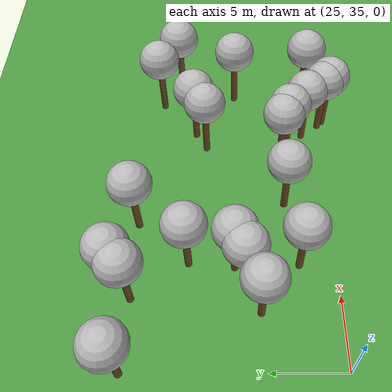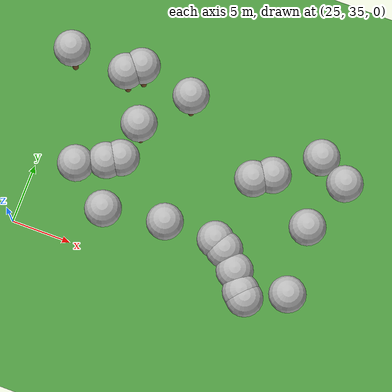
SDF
<sdf version="1.5">
 <world name="default">
  <model name="tree_simple475">
   <static>1</static>
   <link name="link">
    <pose>0 0 0.1 0 -0 0</pose>
    <collision name="collision_trunk">
     <pose>0 0 2 0 -0 0</pose>
     <geometry><cylinder><radius>0.25</radius><length>4</length></cylinder></geometry>
    </collision>
    <collision name="collision_treetop">
     <pose>0 0 5.2 0 -0 0</pose>
     <geometry><sphere><radius>1.5</radius></sphere></geometry>
    </collision>
    <visual name="trunk">
     <pose>0 0 2 0 -0 0</pose>
     <geometry><cylinder><radius>0.25</radius><length>4</length></cylinder></geometry>
     <material>
      <script>
       <uri>model://tree_simple/scripts</uri>
       <uri>model://tree_simple/materials/textures</uri>
       <name>TreeSimple/Trunk</name>
      </script>
     </material>
    </visual>
    <visual name="treetop">
     <pose>0 0 5.2 0 -0 0</pose>
     <geometry><sphere><radius>1.5</radius></sphere></geometry>
     <material>
      <script>
       <uri>model://tree_simple/scripts</uri>
       <uri>model://tree_simple/materials/textures</uri>
       <name>TreeSimple/Treetop</name>
      </script>
     </material>
    </visual>
   </link>
   <pose>30.9431222124 49.7431013716 0 0 -0 0</pose>
  </model>
  <model name="tree_simple449">
   <static>1</static>
   <link name="link">
    <pose>0 0 0.1 0 -0 0</pose>
    <collision name="collision_trunk">
     <pose>0 0 2 0 -0 0</pose>
     <geometry><cylinder><radius>0.25</radius><length>4</length></cylinder></geometry>
    </collision>
    <collision name="collision_treetop">
     <pose>0 0 5.2 0 -0 0</pose>
     <geometry><sphere><radius>1.5</radius></sphere></geometry>
    </collision>
    <visual name="trunk">
     <pose>0 0 2 0 -0 0</pose>
     <geometry><cylinder><radius>0.25</radius><length>4</length></cylinder></geometry>
     <material>
      <script>
       <uri>model://tree_simple/scripts</uri>
       <uri>model://tree_simple/materials/textures</uri>
       <name>TreeSimple/Trunk</name>
      </script>
     </material>
    </visual>
    <visual name="treetop">
     <pose>0 0 5.2 0 -0 0</pose>
     <geometry><sphere><radius>1.5</radius></sphere></geometry>
     <material>
      <script>
       <uri>model://tree_simple/scripts</uri>
       <uri>model://tree_simple/materials/textures</uri>
       <name>TreeSimple/Treetop</name>
      </script>
     </material>
    </visual>
   </link>
   <pose>32.2301413543 37.584175072 0 0 -0 0</pose>
  </model>
  <model name="tree_simple435">
   <static>1</static>
   <link name="link">
    <pose>0 0 0.1 0 -0 0</pose>
    <collision name="collision_trunk">
     <pose>0 0 2 0 -0 0</pose>
     <geometry><cylinder><radius>0.25</radius><length>4</length></cylinder></geometry>
    </collision>
    <collision name="collision_treetop">
     <pose>0 0 5.2 0 -0 0</pose>
     <geometry><sphere><radius>1.5</radius></sphere></geometry>
    </collision>
    <visual name="trunk">
     <pose>0 0 2 0 -0 0</pose>
     <geometry><cylinder><radius>0.25</radius><length>4</length></cylinder></geometry>
     <material>
      <script>
       <uri>model://tree_simple/scripts</uri>
       <uri>model://tree_simple/materials/textures</uri>
       <name>TreeSimple/Trunk</name>
      </script>
     </material>
    </visual>
    <visual name="treetop">
     <pose>0 0 5.2 0 -0 0</pose>
     <geometry><sphere><radius>1.5</radius></sphere></geometry>
     <material>
      <script>
       <uri>model://tree_simple/scripts</uri>
       <uri>model://tree_simple/materials/textures</uri>
       <name>TreeSimple/Treetop</name>
      </script>
     </material>
    </visual>
   </link>
   <pose>25.0532985597 49.162593115 0 0 -0 0</pose>
  </model>
  <model name="tree_simple426">
   <static>1</static>
   <link name="link">
    <pose>0 0 0.1 0 -0 0</pose>
    <collision name="collision_trunk">
     <pose>0 0 2 0 -0 0</pose>
     <geometry><cylinder><radius>0.25</radius><length>4</length></cylinder></geometry>
    </collision>
    <collision name="collision_treetop">
     <pose>0 0 5.2 0 -0 0</pose>
     <geometry><sphere><radius>1.5</radius></sphere></geometry>
    </collision>
    <visual name="trunk">
     <pose>0 0 2 0 -0 0</pose>
     <geometry><cylinder><radius>0.25</radius><length>4</length></cylinder></geometry>
     <material>
      <script>
       <uri>model://tree_simple/scripts</uri>
       <uri>model://tree_simple/materials/textures</uri>
       <name>TreeSimple/Trunk</name>
      </script>
     </material>
    </visual>
    <visual name="treetop">
     <pose>0 0 5.2 0 -0 0</pose>
     <geometry><sphere><radius>1.5</radius></sphere></geometry>
     <material>
      <script>
       <uri>model://tree_simple/scripts</uri>
       <uri>model://tree_simple/materials/textures</uri>
       <name>TreeSimple/Treetop</name>
      </script>
     </material>
    </visual>
   </link>
   <pose>48.2961501598 36.1951986296 0 0 -0 0</pose>
  </model>
  <model name="tree_simple414">
   <static>1</static>
   <link name="link">
    <pose>0 0 0.1 0 -0 0</pose>
    <collision name="collision_trunk">
     <pose>0 0 2 0 -0 0</pose>
     <geometry><cylinder><radius>0.25</radius><length>4</length></cylinder></geometry>
    </collision>
    <collision name="collision_treetop">
     <pose>0 0 5.2 0 -0 0</pose>
     <geometry><sphere><radius>1.5</radius></sphere></geometry>
    </collision>
    <visual name="trunk">
     <pose>0 0 2 0 -0 0</pose>
     <geometry><cylinder><radius>0.25</radius><length>4</length></cylinder></geometry>
     <material>
      <script>
       <uri>model://tree_simple/scripts</uri>
       <uri>model://tree_simple/materials/textures</uri>
       <name>TreeSimple/Trunk</name>
      </script>
     </material>
    </visual>
    <visual name="treetop">
     <pose>0 0 5.2 0 -0 0</pose>
     <geometry><sphere><radius>1.5</radius></sphere></geometry>
     <material>
      <script>
       <uri>model://tree_simple/scripts</uri>
       <uri>model://tree_simple/materials/textures</uri>
       <name>TreeSimple/Treetop</name>
      </script>
     </material>
    </visual>
   </link>
   <pose>44.7953546514 35.1223055557 0 0 -0 0</pose>
  </model>
  <model name="tree_simple388">
   <static>1</static>
   <link name="link">
    <pose>0 0 0.1 0 -0 0</pose>
    <collision name="collision_trunk">
     <pose>0 0 2 0 -0 0</pose>
     <geometry><cylinder><radius>0.25</radius><length>4</length></cylinder></geometry>
    </collision>
    <collision name="collision_treetop">
     <pose>0 0 5.2 0 -0 0</pose>
     <geometry><sphere><radius>1.5</radius></sphere></geometry>
    </collision>
    <visual name="trunk">
     <pose>0 0 2 0 -0 0</pose>
     <geometry><cylinder><radius>0.25</radius><length>4</length></cylinder></geometry>
     <material>
      <script>
       <uri>model://tree_simple/scripts</uri>
       <uri>model://tree_simple/materials/textures</uri>
       <name>TreeSimple/Trunk</name>
      </script>
     </material>
    </visual>
    <visual name="treetop">
     <pose>0 0 5.2 0 -0 0</pose>
     <geometry><sphere><radius>1.5</radius></sphere></geometry>
     <material>
      <script>
       <uri>model://tree_simple/scripts</uri>
       <uri>model://tree_simple/materials/textures</uri>
       <name>TreeSimple/Treetop</name>
      </script>
     </material>
    </visual>
   </link>
   <pose>42.4041487093 37.8396173547 0 0 -0 0</pose>
  </model>
  <model name="tree_simple384">
   <static>1</static>
   <link name="link">
    <pose>0 0 0.1 0 -0 0</pose>
    <collision name="collision_trunk">
     <pose>0 0 2 0 -0 0</pose>
     <geometry><cylinder><radius>0.25</radius><length>4</length></cylinder></geometry>
    </collision>
    <collision name="collision_treetop">
     <pose>0 0 5.2 0 -0 0</pose>
     <geometry><sphere><radius>1.5</radius></sphere></geometry>
    </collision>
    <visual name="trunk">
     <pose>0 0 2 0 -0 0</pose>
     <geometry><cylinder><radius>0.25</radius><length>4</length></cylinder></geometry>
     <material>
      <script>
       <uri>model://tree_simple/scripts</uri>
       <uri>model://tree_simple/materials/textures</uri>
       <name>TreeSimple/Trunk</name>
      </script>
     </material>
    </visual>
    <visual name="treetop">
     <pose>0 0 5.2 0 -0 0</pose>
     <geometry><sphere><radius>1.5</radius></sphere></geometry>
     <material>
      <script>
       <uri>model://tree_simple/scripts</uri>
       <uri>model://tree_simple/materials/textures</uri>
       <name>TreeSimple/Treetop</name>
      </script>
     </material>
    </visual>
   </link>
   <pose>47.965270182 41.8315973536 0 0 -0 0</pose>
  </model>
  <model name="tree_simple366">
   <static>1</static>
   <link name="link">
    <pose>0 0 0.1 0 -0 0</pose>
    <collision name="collision_trunk">
     <pose>0 0 2 0 -0 0</pose>
     <geometry><cylinder><radius>0.25</radius><length>4</length></cylinder></geometry>
    </collision>
    <collision name="collision_treetop">
     <pose>0 0 5.2 0 -0 0</pose>
     <geometry><sphere><radius>1.5</radius></sphere></geometry>
    </collision>
    <visual name="trunk">
     <pose>0 0 2 0 -0 0</pose>
     <geometry><cylinder><radius>0.25</radius><length>4</length></cylinder></geometry>
     <material>
      <script>
       <uri>model://tree_simple/scripts</uri>
       <uri>model://tree_simple/materials/textures</uri>
       <name>TreeSimple/Trunk</name>
      </script>
     </material>
    </visual>
    <visual name="treetop">
     <pose>0 0 5.2 0 -0 0</pose>
     <geometry><sphere><radius>1.5</radius></sphere></geometry>
     <material>
      <script>
       <uri>model://tree_simple/scripts</uri>
       <uri>model://tree_simple/materials/textures</uri>
       <name>TreeSimple/Treetop</name>
      </script>
     </material>
    </visual>
   </link>
   <pose>37.2116014065 38.3075288524 0 0 -0 0</pose>
  </model>
  <model name="tree_simple337">
   <static>1</static>
   <link name="link">
    <pose>0 0 0.1 0 -0 0</pose>
    <collision name="collision_trunk">
     <pose>0 0 2 0 -0 0</pose>
     <geometry><cylinder><radius>0.25</radius><length>4</length></cylinder></geometry>
    </collision>
    <collision name="collision_treetop">
     <pose>0 0 5.2 0 -0 0</pose>
     <geometry><sphere><radius>1.5</radius></sphere></geometry>
    </collision>
    <visual name="trunk">
     <pose>0 0 2 0 -0 0</pose>
     <geometry><cylinder><radius>0.25</radius><length>4</length></cylinder></geometry>
     <material>
      <script>
       <uri>model://tree_simple/scripts</uri>
       <uri>model://tree_simple/materials/textures</uri>
       <name>TreeSimple/Trunk</name>
      </script>
     </material>
    </visual>
    <visual name="treetop">
     <pose>0 0 5.2 0 -0 0</pose>
     <geometry><sphere><radius>1.5</radius></sphere></geometry>
     <material>
      <script>
       <uri>model://tree_simple/scripts</uri>
       <uri>model://tree_simple/materials/textures</uri>
       <name>TreeSimple/Treetop</name>
      </script>
     </material>
    </visual>
   </link>
   <pose>43.9549385006 44.8684303608 0 0 -0 0</pose>
  </model>
  <model name="tree_simple306">
   <static>1</static>
   <link name="link">
    <pose>0 0 0.1 0 -0 0</pose>
    <collision name="collision_trunk">
     <pose>0 0 2 0 -0 0</pose>
     <geometry><cylinder><radius>0.25</radius><length>4</length></cylinder></geometry>
    </collision>
    <collision name="collision_treetop">
     <pose>0 0 5.2 0 -0 0</pose>
     <geometry><sphere><radius>1.5</radius></sphere></geometry>
    </collision>
    <visual name="trunk">
     <pose>0 0 2 0 -0 0</pose>
     <geometry><cylinder><radius>0.25</radius><length>4</length></cylinder></geometry>
     <material>
      <script>
       <uri>model://tree_simple/scripts</uri>
       <uri>model://tree_simple/materials/textures</uri>
       <name>TreeSimple/Trunk</name>
      </script>
     </material>
    </visual>
    <visual name="treetop">
     <pose>0 0 5.2 0 -0 0</pose>
     <geometry><sphere><radius>1.5</radius></sphere></geometry>
     <material>
      <script>
       <uri>model://tree_simple/scripts</uri>
       <uri>model://tree_simple/materials/textures</uri>
       <name>TreeSimple/Treetop</name>
      </script>
     </material>
    </visual>
   </link>
   <pose>41.4749799485 38.3641433375 0 0 -0 0</pose>
  </model>
  <model name="tree_simple197">
   <static>1</static>
   <link name="link">
    <pose>0 0 0.1 0 -0 0</pose>
    <collision name="collision_trunk">
     <pose>0 0 2 0 -0 0</pose>
     <geometry><cylinder><radius>0.25</radius><length>4</length></cylinder></geometry>
    </collision>
    <collision name="collision_treetop">
     <pose>0 0 5.2 0 -0 0</pose>
     <geometry><sphere><radius>1.5</radius></sphere></geometry>
    </collision>
    <visual name="trunk">
     <pose>0 0 2 0 -0 0</pose>
     <geometry><cylinder><radius>0.25</radius><length>4</length></cylinder></geometry>
     <material>
      <script>
       <uri>model://tree_simple/scripts</uri>
       <uri>model://tree_simple/materials/textures</uri>
       <name>TreeSimple/Trunk</name>
      </script>
     </material>
    </visual>
    <visual name="treetop">
     <pose>0 0 5.2 0 -0 0</pose>
     <geometry><sphere><radius>1.5</radius></sphere></geometry>
     <material>
      <script>
       <uri>model://tree_simple/scripts</uri>
       <uri>model://tree_simple/materials/textures</uri>
       <name>TreeSimple/Treetop</name>
      </script>
     </material>
    </visual>
   </link>
   <pose>45.2259514073 34.7129577048 0 0 -0 0</pose>
  </model>
  <model name="tree_simple180">
   <static>1</static>
   <link name="link">
    <pose>0 0 0.1 0 -0 0</pose>
    <collision name="collision_trunk">
     <pose>0 0 2 0 -0 0</pose>
     <geometry><cylinder><radius>0.25</radius><length>4</length></cylinder></geometry>
    </collision>
    <collision name="collision_treetop">
     <pose>0 0 5.2 0 -0 0</pose>
     <geometry><sphere><radius>1.5</radius></sphere></geometry>
    </collision>
    <visual name="trunk">
     <pose>0 0 2 0 -0 0</pose>
     <geometry><cylinder><radius>0.25</radius><length>4</length></cylinder></geometry>
     <material>
      <script>
       <uri>model://tree_simple/scripts</uri>
       <uri>model://tree_simple/materials/textures</uri>
       <name>TreeSimple/Trunk</name>
      </script>
     </material>
    </visual>
    <visual name="treetop">
     <pose>0 0 5.2 0 -0 0</pose>
     <geometry><sphere><radius>1.5</radius></sphere></geometry>
     <material>
      <script>
       <uri>model://tree_simple/scripts</uri>
       <uri>model://tree_simple/materials/textures</uri>
       <name>TreeSimple/Treetop</name>
      </script>
     </material>
    </visual>
   </link>
   <pose>31.0354412198 41.3621247095 0 0 -0 0</pose>
  </model>
  <model name="tree_simple164">
   <static>1</static>
   <link name="link">
    <pose>0 0 0.1 0 -0 0</pose>
    <collision name="collision_trunk">
     <pose>0 0 2 0 -0 0</pose>
     <geometry><cylinder><radius>0.25</radius><length>4</length></cylinder></geometry>
    </collision>
    <collision name="collision_treetop">
     <pose>0 0 5.2 0 -0 0</pose>
     <geometry><sphere><radius>1.5</radius></sphere></geometry>
    </collision>
    <visual name="trunk">
     <pose>0 0 2 0 -0 0</pose>
     <geometry><cylinder><radius>0.25</radius><length>4</length></cylinder></geometry>
     <material>
      <script>
       <uri>model://tree_simple/scripts</uri>
       <uri>model://tree_simple/materials/textures</uri>
       <name>TreeSimple/Trunk</name>
      </script>
     </material>
    </visual>
    <visual name="treetop">
     <pose>0 0 5.2 0 -0 0</pose>
     <geometry><sphere><radius>1.5</radius></sphere></geometry>
     <material>
      <script>
       <uri>model://tree_simple/scripts</uri>
       <uri>model://tree_simple/materials/textures</uri>
       <name>TreeSimple/Treetop</name>
      </script>
     </material>
    </visual>
   </link>
   <pose>32.4161735763 45.136147052 0 0 -0 0</pose>
  </model>
  <model name="tree_simple159">
   <static>1</static>
   <link name="link">
    <pose>0 0 0.1 0 -0 0</pose>
    <collision name="collision_trunk">
     <pose>0 0 2 0 -0 0</pose>
     <geometry><cylinder><radius>0.25</radius><length>4</length></cylinder></geometry>
    </collision>
    <collision name="collision_treetop">
     <pose>0 0 5.2 0 -0 0</pose>
     <geometry><sphere><radius>1.5</radius></sphere></geometry>
    </collision>
    <visual name="trunk">
     <pose>0 0 2 0 -0 0</pose>
     <geometry><cylinder><radius>0.25</radius><length>4</length></cylinder></geometry>
     <material>
      <script>
       <uri>model://tree_simple/scripts</uri>
       <uri>model://tree_simple/materials/textures</uri>
       <name>TreeSimple/Trunk</name>
      </script>
     </material>
    </visual>
    <visual name="treetop">
     <pose>0 0 5.2 0 -0 0</pose>
     <geometry><sphere><radius>1.5</radius></sphere></geometry>
     <material>
      <script>
       <uri>model://tree_simple/scripts</uri>
       <uri>model://tree_simple/materials/textures</uri>
       <name>TreeSimple/Treetop</name>
      </script>
     </material>
    </visual>
   </link>
   <pose>28.8379877366 40.3060921844 0 0 -0 0</pose>
  </model>
  <model name="tree_simple144">
   <static>1</static>
   <link name="link">
    <pose>0 0 0.1 0 -0 0</pose>
    <collision name="collision_trunk">
     <pose>0 0 2 0 -0 0</pose>
     <geometry><cylinder><radius>0.25</radius><length>4</length></cylinder></geometry>
    </collision>
    <collision name="collision_treetop">
     <pose>0 0 5.2 0 -0 0</pose>
     <geometry><sphere><radius>1.5</radius></sphere></geometry>
    </collision>
    <visual name="trunk">
     <pose>0 0 2 0 -0 0</pose>
     <geometry><cylinder><radius>0.25</radius><length>4</length></cylinder></geometry>
     <material>
      <script>
       <uri>model://tree_simple/scripts</uri>
       <uri>model://tree_simple/materials/textures</uri>
       <name>TreeSimple/Trunk</name>
      </script>
     </material>
    </visual>
    <visual name="treetop">
     <pose>0 0 5.2 0 -0 0</pose>
     <geometry><sphere><radius>1.5</radius></sphere></geometry>
     <material>
      <script>
       <uri>model://tree_simple/scripts</uri>
       <uri>model://tree_simple/materials/textures</uri>
       <name>TreeSimple/Treetop</name>
      </script>
     </material>
    </visual>
   </link>
   <pose>29.8740769381 48.8863352602 0 0 -0 0</pose>
  </model>
  <model name="tree_simple99">
   <static>1</static>
   <link name="link">
    <pose>0 0 0.1 0 -0 0</pose>
    <collision name="collision_trunk">
     <pose>0 0 2 0 -0 0</pose>
     <geometry><cylinder><radius>0.25</radius><length>4</length></cylinder></geometry>
    </collision>
    <collision name="collision_treetop">
     <pose>0 0 5.2 0 -0 0</pose>
     <geometry><sphere><radius>1.5</radius></sphere></geometry>
    </collision>
    <visual name="trunk">
     <pose>0 0 2 0 -0 0</pose>
     <geometry><cylinder><radius>0.25</radius><length>4</length></cylinder></geometry>
     <material>
      <script>
       <uri>model://tree_simple/scripts</uri>
       <uri>model://tree_simple/materials/textures</uri>
       <name>TreeSimple/Trunk</name>
      </script>
     </material>
    </visual>
    <visual name="treetop">
     <pose>0 0 5.2 0 -0 0</pose>
     <geometry><sphere><radius>1.5</radius></sphere></geometry>
     <material>
      <script>
       <uri>model://tree_simple/scripts</uri>
       <uri>model://tree_simple/materials/textures</uri>
       <name>TreeSimple/Treetop</name>
      </script>
     </material>
    </visual>
   </link>
   <pose>43.7646885834 36.5094094544 0 0 -0 0</pose>
  </model>
  <model name="tree_simple78">
   <static>1</static>
   <link name="link">
    <pose>0 0 0.1 0 -0 0</pose>
    <collision name="collision_trunk">
     <pose>0 0 2 0 -0 0</pose>
     <geometry><cylinder><radius>0.25</radius><length>4</length></cylinder></geometry>
    </collision>
    <collision name="collision_treetop">
     <pose>0 0 5.2 0 -0 0</pose>
     <geometry><sphere><radius>1.5</radius></sphere></geometry>
    </collision>
    <visual name="trunk">
     <pose>0 0 2 0 -0 0</pose>
     <geometry><cylinder><radius>0.25</radius><length>4</length></cylinder></geometry>
     <material>
      <script>
       <uri>model://tree_simple/scripts</uri>
       <uri>model://tree_simple/materials/textures</uri>
       <name>TreeSimple/Trunk</name>
      </script>
     </material>
    </visual>
    <visual name="treetop">
     <pose>0 0 5.2 0 -0 0</pose>
     <geometry><sphere><radius>1.5</radius></sphere></geometry>
     <material>
      <script>
       <uri>model://tree_simple/scripts</uri>
       <uri>model://tree_simple/materials/textures</uri>
       <name>TreeSimple/Treetop</name>
      </script>
     </material>
    </visual>
   </link>
   <pose>35.525854971 48.7689145504 0 0 -0 0</pose>
  </model>
  <model name="tree_simple65">
   <static>1</static>
   <link name="link">
    <pose>0 0 0.1 0 -0 0</pose>
    <collision name="collision_trunk">
     <pose>0 0 2 0 -0 0</pose>
     <geometry><cylinder><radius>0.25</radius><length>4</length></cylinder></geometry>
    </collision>
    <collision name="collision_treetop">
     <pose>0 0 5.2 0 -0 0</pose>
     <geometry><sphere><radius>1.5</radius></sphere></geometry>
    </collision>
    <visual name="trunk">
     <pose>0 0 2 0 -0 0</pose>
     <geometry><cylinder><radius>0.25</radius><length>4</length></cylinder></geometry>
     <material>
      <script>
       <uri>model://tree_simple/scripts</uri>
       <uri>model://tree_simple/materials/textures</uri>
       <name>TreeSimple/Trunk</name>
      </script>
     </material>
    </visual>
    <visual name="treetop">
     <pose>0 0 5.2 0 -0 0</pose>
     <geometry><sphere><radius>1.5</radius></sphere></geometry>
     <material>
      <script>
       <uri>model://tree_simple/scripts</uri>
       <uri>model://tree_simple/materials/textures</uri>
       <name>TreeSimple/Treetop</name>
      </script>
     </material>
    </visual>
   </link>
   <pose>42.5612978855 44.0438819022 0 0 -0 0</pose>
  </model>
  <model name="tree_simple33">
   <static>1</static>
   <link name="link">
    <pose>0 0 0.1 0 -0 0</pose>
    <collision name="collision_trunk">
     <pose>0 0 2 0 -0 0</pose>
     <geometry><cylinder><radius>0.25</radius><length>4</length></cylinder></geometry>
    </collision>
    <collision name="collision_treetop">
     <pose>0 0 5.2 0 -0 0</pose>
     <geometry><sphere><radius>1.5</radius></sphere></geometry>
    </collision>
    <visual name="trunk">
     <pose>0 0 2 0 -0 0</pose>
     <geometry><cylinder><radius>0.25</radius><length>4</length></cylinder></geometry>
     <material>
      <script>
       <uri>model://tree_simple/scripts</uri>
       <uri>model://tree_simple/materials/textures</uri>
       <name>TreeSimple/Trunk</name>
      </script>
     </material>
    </visual>
    <visual name="treetop">
     <pose>0 0 5.2 0 -0 0</pose>
     <geometry><sphere><radius>1.5</radius></sphere></geometry>
     <material>
      <script>
       <uri>model://tree_simple/scripts</uri>
       <uri>model://tree_simple/materials/textures</uri>
       <name>TreeSimple/Treetop</name>
      </script>
     </material>
    </visual>
   </link>
   <pose>49.5679198659 46.2009891227 0 0 -0 0</pose>
  </model>
  <model name="tree_simple24">
   <static>1</static>
   <link name="link">
    <pose>0 0 0.1 0 -0 0</pose>
    <collision name="collision_trunk">
     <pose>0 0 2 0 -0 0</pose>
     <geometry><cylinder><radius>0.25</radius><length>4</length></cylinder></geometry>
    </collision>
    <collision name="collision_treetop">
     <pose>0 0 5.2 0 -0 0</pose>
     <geometry><sphere><radius>1.5</radius></sphere></geometry>
    </collision>
    <visual name="trunk">
     <pose>0 0 2 0 -0 0</pose>
     <geometry><cylinder><radius>0.25</radius><length>4</length></cylinder></geometry>
     <material>
      <script>
       <uri>model://tree_simple/scripts</uri>
       <uri>model://tree_simple/materials/textures</uri>
       <name>TreeSimple/Trunk</name>
      </script>
     </material>
    </visual>
    <visual name="treetop">
     <pose>0 0 5.2 0 -0 0</pose>
     <geometry><sphere><radius>1.5</radius></sphere></geometry>
     <material>
      <script>
       <uri>model://tree_simple/scripts</uri>
       <uri>model://tree_simple/materials/textures</uri>
       <name>TreeSimple/Treetop</name>
      </script>
     </material>
    </visual>
   </link>
   <pose>32.0910142743 41.9793908422 0 0 -0 0</pose>
  </model>
  <model name="tree_simple11">
   <static>1</static>
   <link name="link">
    <pose>0 0 0.1 0 -0 0</pose>
    <collision name="collision_trunk">
     <pose>0 0 2 0 -0 0</pose>
     <geometry><cylinder><radius>0.25</radius><length>4</length></cylinder></geometry>
    </collision>
    <collision name="collision_treetop">
     <pose>0 0 5.2 0 -0 0</pose>
     <geometry><sphere><radius>1.5</radius></sphere></geometry>
    </collision>
    <visual name="trunk">
     <pose>0 0 2 0 -0 0</pose>
     <geometry><cylinder><radius>0.25</radius><length>4</length></cylinder></geometry>
     <material>
      <script>
       <uri>model://tree_simple/scripts</uri>
       <uri>model://tree_simple/materials/textures</uri>
       <name>TreeSimple/Trunk</name>
      </script>
     </material>
    </visual>
    <visual name="treetop">
     <pose>0 0 5.2 0 -0 0</pose>
     <geometry><sphere><radius>1.5</radius></sphere></geometry>
     <material>
      <script>
       <uri>model://tree_simple/scripts</uri>
       <uri>model://tree_simple/materials/textures</uri>
       <name>TreeSimple/Treetop</name>
      </script>
     </material>
    </visual>
   </link>
   <pose>47.1204794218 47.5889686544 0 0 -0 0</pose>
  </model>
  <model name="ground_plane">
   <static>true</static>
   <link name="link">
    <collision name="collision">
     <geometry><plane><normal>0 0 1</normal><size>250 250</size></plane></geometry>
     <surface><friction><ode><mu>1</mu><mu2>1</mu2></ode></friction></surface>
    </collision>
    <visual name="grass">
     <cast_shadows>false</cast_shadows>
     <geometry><plane><normal>0 0 1</normal><size>150 250</size></plane></geometry>
     <material>
      <script><uri>file://media/materials/scripts/Gazebo.material</uri><name>Gazebo/Grass</name></script>
     </material>
    </visual>
   </link>
  </model>
 </world>
</sdf>
